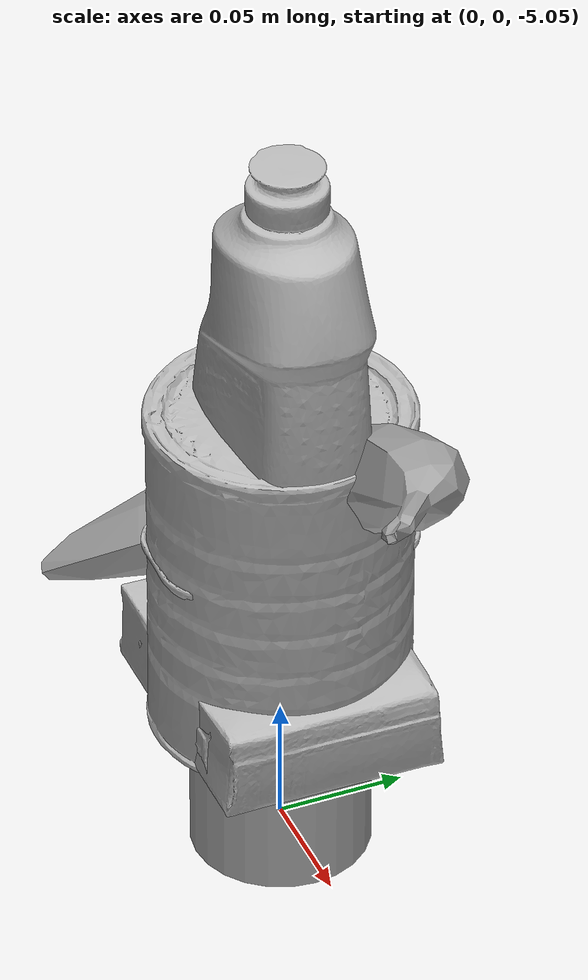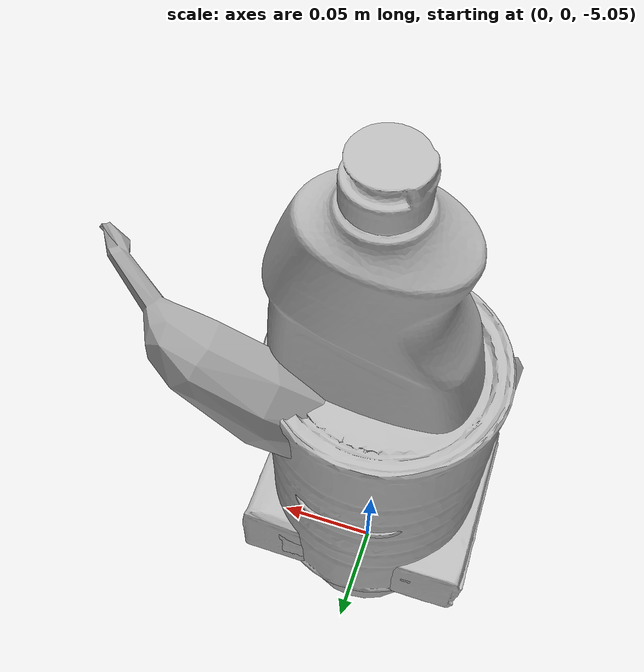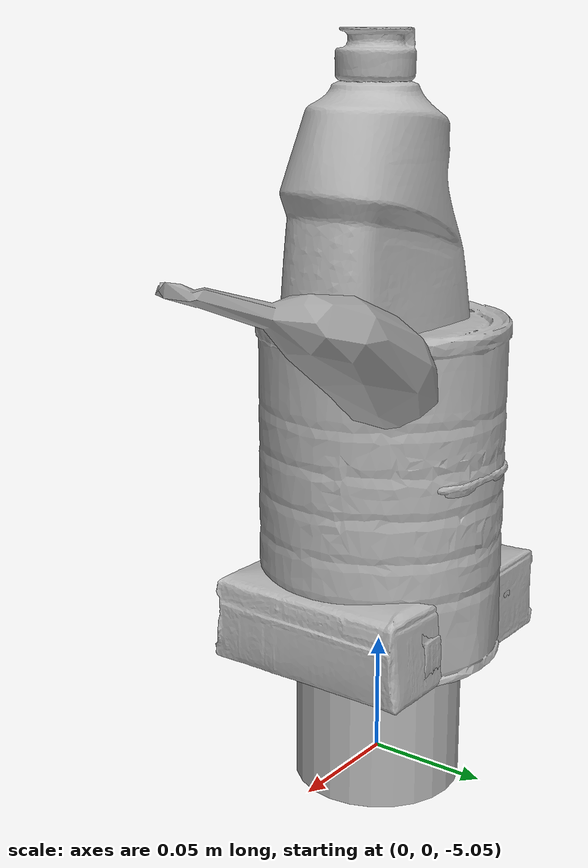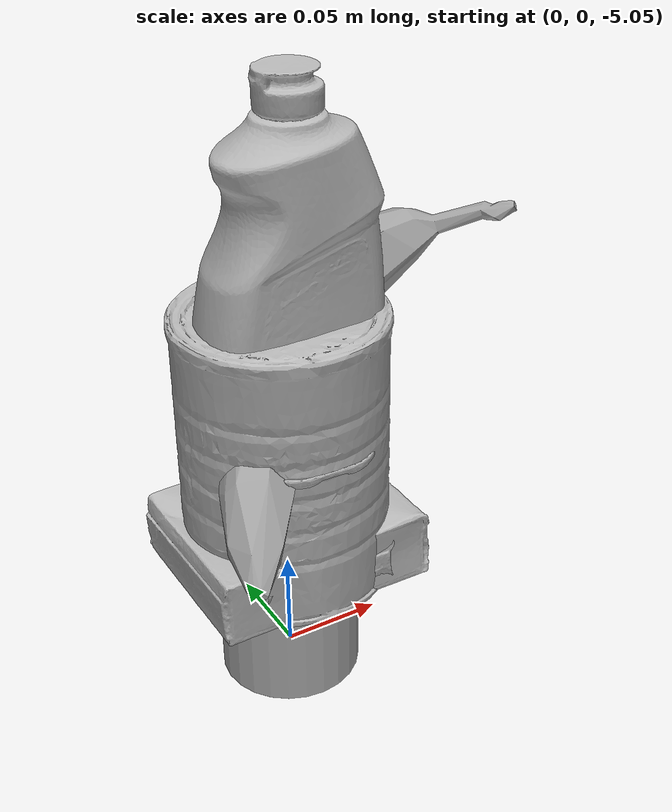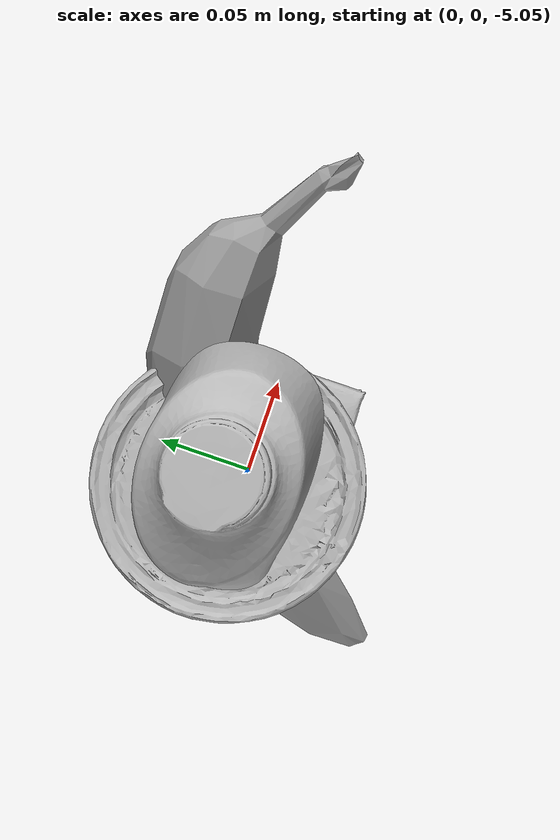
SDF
<sdf version="1.8">
 <world name="formal_objects_dataset">
  <plugin filename="ignition-gazebo-physics-system" name="ignition::gazebo::systems::Physics"/>
  <plugin filename="ignition-gazebo-user-commands-system" name="ignition::gazebo::systems::UserCommands"/>
  <plugin filename="ignition-gazebo-scene-broadcaster-system" name="ignition::gazebo::systems::SceneBroadcaster"/>
  <plugin filename="ignition-gazebo-sensors-system" name="ignition::gazebo::systems::Sensors">
   <render_engine>ogre2</render_engine>
  </plugin>
  <scene>
   <ambient>0.55 0.55 0.55 1</ambient>
   <background>0.72 0.76 0.80 1</background>
   <shadows>true</shadows>
  </scene>
  <light type="directional" name="sun">
   <pose>0 0 5 0 0 0</pose>
   <diffuse>0.85 0.85 0.85 1</diffuse>
   <specular>0.25 0.25 0.25 1</specular>
   <attenuation>
    <range>100</range>
    <constant>0.9</constant>
    <linear>0.01</linear>
    <quadratic>0.001</quadratic>
   </attenuation>
   <direction>-0.45 0.20 -0.87</direction>
  </light>
  <model name="ground">
   <static>true</static>
   <link name="link">
    <collision name="collision">
     <geometry><plane><normal>0 0 1</normal><size>8 8</size></plane></geometry>
    </collision>
    <visual name="visual">
     <geometry><plane><normal>0 0 1</normal><size>8 8</size></plane></geometry>
     <material><ambient>0.35 0.35 0.35 1</ambient><diffuse>0.45 0.45 0.45 1</diffuse></material>
    </visual>
   </link>
  </model>
  <model name="table">
   <static>true</static>
   <link name="top">
    <pose>0 0 0.72 0 0 0</pose>
    <collision name="collision"><geometry><box><size>1.20 0.80 0.06</size></box></geometry></collision>
    <visual name="visual">
     <geometry><box><size>1.20 0.80 0.06</size></box></geometry>
     <material><ambient>0.40 0.24 0.12 1</ambient><diffuse>0.55 0.34 0.18 1</diffuse></material>
    </visual>
   </link>
  </model>
  <include>
   <uri>model://banana</uri>
   <name>banana</name>
   <static>true</static>
   <pose>0 0 -5 0 0 0</pose>
   <plugin filename="ignition-gazebo-label-system" name="ignition::gazebo::systems::Label">
    <label>2</label>
   </plugin>
  </include>
  <include>
   <uri>model://beer</uri>
   <name>beer</name>
   <static>true</static>
   <pose>0 0 -5 0 0 0</pose>
   <plugin filename="ignition-gazebo-label-system" name="ignition::gazebo::systems::Label">
    <label>3</label>
   </plugin>
  </include>
  <include>
   <uri>model://bleach_cleanser</uri>
   <name>bleach_cleanser</name>
   <static>true</static>
   <pose>0 0 -5 0 0 0</pose>
   <plugin filename="ignition-gazebo-label-system" name="ignition::gazebo::systems::Label">
    <label>4</label>
   </plugin>
  </include>
  <include>
   <uri>model://gelatin_box</uri>
   <name>gelatin_box</name>
   <static>true</static>
   <pose>0 0 -5 0 0 0</pose>
   <plugin filename="ignition-gazebo-label-system" name="ignition::gazebo::systems::Label">
    <label>9</label>
   </plugin>
  </include>
  <include>
   <uri>model://master_chef_can</uri>
   <name>master_chef_can</name>
   <static>true</static>
   <pose>0 0 -5 0 0 0</pose>
   <plugin filename="ignition-gazebo-label-system" name="ignition::gazebo::systems::Label">
    <label>10</label>
   </plugin>
  </include>
  <include>
   <uri>model://potted_meat_can</uri>
   <name>potted_meat_can</name>
   <static>true</static>
   <pose>0 0 -5 0 0 0</pose>
   <plugin filename="ignition-gazebo-label-system" name="ignition::gazebo::systems::Label">
    <label>13</label>
   </plugin>
  </include>
  <include>
   <uri>model://pudding_box</uri>
   <name>pudding_box</name>
   <static>true</static>
   <pose>0 0 -5 0 0 0</pose>
   <plugin filename="ignition-gazebo-label-system" name="ignition::gazebo::systems::Label">
    <label>14</label>
   </plugin>
  </include>
  <include>
   <uri>model://tomato_soup_can</uri>
   <name>tomato_soup_can</name>
   <static>true</static>
   <pose>0 0 -5 0 0 0</pose>
   <plugin filename="ignition-gazebo-label-system" name="ignition::gazebo::systems::Label">
    <label>16</label>
   </plugin>
  </include>
  <include>
   <uri>model://tuna_fish_can</uri>
   <name>tuna_fish_can</name>
   <static>true</static>
   <pose>0 0 -5 0 0 0</pose>
   <plugin filename="ignition-gazebo-label-system" name="ignition::gazebo::systems::Label">
    <label>17</label>
   </plugin>
  </include>
  <model name="training_camera">
   <static>true</static>
   <pose>-1.20 0 1.075 0 0.1745329252 0</pose>
   <link name="link">
    <sensor name="rgb" type="camera">
     <topic>/training/rgb</topic>
     <camera>
      <horizontal_fov>1.2217304764</horizontal_fov>
      <image><width>640</width><height>480</height><format>R8G8B8</format></image>
      <clip><near>0.20</near><far>10.0</far></clip>
     </camera>
     <always_on>true</always_on>
     <update_rate>15</update_rate>
     <visualize>false</visualize>
    </sensor>
    <sensor name="visible_boxes" type="boundingbox_camera">
     <topic>/training/boxes</topic>
     <camera>
      <box_type>visible_2d</box_type>
      <horizontal_fov>1.2217304764</horizontal_fov>
      <image><width>640</width><height>480</height></image>
      <clip><near>0.20</near><far>10.0</far></clip>
     </camera>
     <always_on>true</always_on>
     <update_rate>15</update_rate>
     <visualize>false</visualize>
    </sensor>
   </link>
  </model>
 </world>
</sdf>

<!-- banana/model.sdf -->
<sdf version="1.5">
	<model name="OBJECT">
		<link name="Obj_3">
			<pose>0 0 0.1 2.2 -0.296705961227417 0.01745329052209854</pose>
			<inertial>
				<mass>0.8622732758522034</mass>
				<pose>0.03477764129638672 0.0029336530715227127 0.01468808762729168 2.1619239021219983e-07 1.229939812219527e-07 -1.3813895805014909e-07</pose>
				<inertia>
					<ixx>0.010104811936616898</ixx>
					<ixy>0.0</ixy>
					<ixz>0.0</ixz>
					<iyy>0.02979417145252228</iyy>
					<iyz>0.0</iyz>
					<izz>0.022718265652656555</izz>
				</inertia>
			</inertial>
			<collision name="VIS_Obj_3_Banana_Coll">
				<pose>-0.18325240910053253 -0.042692720890045166 -0.0038590345066040754 3.054346677799913e-07 5.162897664945376e-08 -1.8141007274152798e-07</pose>
				<geometry>
					<mesh>
						<uri>model://banana/meshes/collisions/COL_Obj_3_Banana_Coll.dae</uri>
						<scale>0.11999999731779099 0.11999999731779099 0.11999999731779099</scale>
					</mesh>
				</geometry>
			</collision>
			<visual name="VIS_Obj_3_Banana">
				<pose>-0.18325240910053253 -0.042692720890045166 -0.0038590345066040754 3.054346677799913e-07 5.162897664945376e-08 -1.8141007274152798e-07</pose>
				<geometry>
					<mesh>
						<uri>model://banana/meshes/visual/VIS_Obj_3_Banana.dae</uri>
						<scale>0.11999999731779099 0.11999999731779099 0.11999999731779099</scale>
					</mesh>
				</geometry>
			</visual>
		</link>
	</model>
</sdf>

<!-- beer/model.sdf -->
<sdf version='1.4'>
  <model name="beer">
    <link name='link'>
      <pose>0 0 0 0 0 0</pose>
      <inertial>
        <mass>0.390</mass>
        <inertia>
          <ixx>0.00058</ixx>
          <ixy>0</ixy>
          <ixz>0</ixz>
          <iyy>0.00058</iyy>
          <iyz>0</iyz>
          <izz>0.00025</izz>
        </inertia>
      </inertial>
      <collision name='collision'>
        <geometry>
          <cylinder>
            <radius>0.03500</radius>
            <length>0.12000</length>
          </cylinder>
        </geometry>
      </collision>

      <visual name='visual'>
        <geometry>
          <cylinder>
            <radius>0.03500</radius>
            <length>0.12000</length>
          </cylinder>
        </geometry>

        <material>
          <script>
            <uri>model://beer/materials/scripts</uri>
            <uri>model://beer/materials/textures</uri>
            <name>Beer/Diffuse</name>
          </script>
        </material>
      </visual>
    </link>
  </model>
</sdf>

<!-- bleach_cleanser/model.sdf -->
<sdf version="1.6">
  <model name="bleach_cleanser">
    <link name="link">
      <inertial>
        <mass>1.131</mass>
        <inertia>
          <ixx>0.006288831</ixx>
          <ixy>0.0</ixy>
          <ixz>0.0</ixz>
          <iyy>0.006795802</iyy>
          <iyz>0.0</iyz>
          <izz>0.001303383</izz>
        </inertia>
        <pose>0 0 0.125 0 0 0</pose>
      </inertial>
      <collision name="collision">
        <pose>0.02 -0.012 0 0 0 0</pose>
        <geometry>
          <mesh>
            <uri>model://bleach_cleanser/meshes/nontextured.stl</uri>
          </mesh>
        </geometry>
      </collision>
      <visual name="visual">
        <pose>0.02 -0.012 0 0 0 0</pose>
        <geometry>
          <mesh>
            <uri>model://bleach_cleanser/meshes/textured.dae</uri>
          </mesh>
        </geometry>
      </visual>
    </link>
  </model>
</sdf>

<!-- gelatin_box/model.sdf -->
<sdf version="1.6">
  <model name="gelatin_box">
    <link name="link">
      <inertial>
        <mass>0.097</mass>
        <inertia>
          <ixx>0.000064739</ixx>
          <ixy>0.0</ixy>
          <ixz>0.0</ixz>
          <iyy>0.000049413</iyy>
          <iyz>0.0</iyz>
          <izz>0.000101478</izz>
        </inertia>
        <pose>0 0 0.014 0 0 0</pose>
      </inertial>
      <collision name="collision">
        <pose>0 0 0.014 0 0 0</pose>
        <geometry>
          <box>
            <size>0.073 0.085 0.028</size>
          </box>
        </geometry>
      </collision>
      <visual name="visual">
        <!--
          DAE 的厚度轴是 X，而 collision 的厚度轴是 Z。先绕 Y
          轴旋转 90° 使三边对应，再对齐两者包围盒中心。
        -->
        <pose>-0.036801976 -0.001813649 0.012466166 0 1.570796327 0</pose>
        <geometry>
          <mesh>
            <uri>model://gelatin_box/meshes/textured.dae</uri>
          </mesh>
        </geometry>
      </visual>
    </link>
  </model>
</sdf>

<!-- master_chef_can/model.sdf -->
<sdf version="1.6">
  <model name="master_chef_can">
    <link name="link">
      <inertial>
        <mass>0.414</mass>
        <inertia>
          <ixx>0.000935778</ixx>
          <ixy>0.0</ixy>
          <ixz>0.0</ixz>
          <iyy>0.000935778</iyy> <!-- same as ixx -->
          <iyz>0.0</iyz>
          <izz>0.000538407</izz>
        </inertia>
        <pose>0 0 0.0695 0 0 0</pose>
      </inertial>
      <collision name="collision">
        <pose>0 0 0.0695 0 0 0</pose>
        <geometry>
          <cylinder>
            <radius>0.051</radius>
            <length>0.139</length>
          </cylinder>
        </geometry>
      </collision>
      <visual name="visual">
        <!-- 用网格包围盒中心对齐简化圆柱 collision 中心。 -->
        <pose>0.000181760 -0.000011235 -0.000672300 0 0 0</pose>
        <geometry>
          <mesh>
            <uri>model://master_chef_can/meshes/textured.dae</uri>
          </mesh>
        </geometry>
      </visual>
    </link>
  </model>
</sdf>

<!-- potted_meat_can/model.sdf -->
<sdf version="1.6">
  <model name="potted_meat_can">
    <link name="link">
      <inertial>
        <mass>0.370</mass>
        <inertia>
          <ixx>0.000497434</ixx>
          <ixy>0.0</ixy>
          <ixz>0.0</ixz>
          <iyy>0.000284407</iyy>
          <iyz>0.0</iyz>
          <izz>0.000367194</izz>
        </inertia>
        <pose>0 0 0.041 0 0 0</pose>
      </inertial>
      <collision name="collision">
        <pose>0 0 0.041 0 0 0</pose>
        <geometry>
          <box>
            <size>0.050 0.097 0.082</size>
          </box>
        </geometry>
      </collision>
      <visual name="visual">
        <!-- 保留原有绕 Z 轴 1.5 rad 的边长对应，仅修正中心偏移。 -->
        <pose>-0.000203250 -0.000041670 -0.000868438 0 0 1.5</pose>
        <geometry>
          <mesh>
            <uri>model://potted_meat_can/meshes/textured.dae</uri>
          </mesh>
        </geometry>
      </visual>
    </link>
  </model>
</sdf>

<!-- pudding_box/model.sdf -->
<sdf version="1.6">
  <model name="pudding_box">
    <link name="link">
      <inertial>
        <mass>0.187</mass>
        <inertia>
          <ixx>0.000142525</ixx>
          <ixy>0.0</ixy>
          <ixz>0.0</ixz>
          <iyy>0.000207648</iyy>
          <iyz>0.0</iyz>
          <izz>0.000311994</izz>
        </inertia>
        <pose>0 0 0.0175 0 0 0</pose>
      </inertial>
      <collision name="collision">
        <pose>0 0 0.0175 0 0 0</pose>
        <geometry>
          <box>
            <size>0.110 0.089 0.035</size>
          </box>
        </geometry>
      </collision>
      <visual name="visual">
        <!--
          DAE 的厚度轴是 Y，而 collision 的厚度轴是 Z。先绕 X
          轴旋转 90° 使三边对应，再对齐两者包围盒中心。
        -->
        <pose>0.000264585 0.044871683 0.016779020 1.570796327 0 0</pose>
        <geometry>
          <mesh>
            <uri>model://pudding_box/meshes/textured.dae</uri>
          </mesh>
        </geometry>
      </visual>
    </link>
  </model>
</sdf>

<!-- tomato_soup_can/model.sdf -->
<sdf version="1.6">
  <model name="tomato_soup_can">
    <link name="link">
      <inertial>
        <mass>0.349</mass>
        <inertia>
          <ixx>0.000391694</ixx>
          <ixy>0.0</ixy>
          <ixz>0.0</ixz>
          <iyy>0.000391694</iyy> <!-- same as ixx -->
          <iyz>0.0</iyz>
          <izz>0.00019003</izz>
        </inertia>
        <pose>0 0 0.0505 0 0 0</pose>
      </inertial>
      <collision name="collision">
        <pose>0 0 0.0505 0 0 0</pose>
        <geometry>
          <cylinder>
            <radius>0.033</radius>
            <length>0.101</length>
          </cylinder>
        </geometry>
      </collision>
      <visual name="visual">
        <!-- 修正原配置导致的约 86 mm 偏移，对齐网格与圆柱 collision 中心。 -->
        <pose>0.001383130 0.000855565 -0.000503905 0 0 0</pose>
        <geometry>
          <mesh>
            <uri>model://tomato_soup_can/meshes/textured.dae</uri>
          </mesh>
        </geometry>
      </visual>
    </link>
  </model>
</sdf>

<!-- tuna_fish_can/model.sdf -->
<sdf version="1.6">
  <model name="tuna_fish_can">
    <link name="link">
      <inertial>
        <mass>0.171</mass>
        <inertia>
          <ixx>0.000092735</ixx>
          <ixy>0.0</ixy>
          <ixz>0.0</ixz>
          <iyy>0.000092735</iyy> <!-- same as ixx -->
          <iyz>0.0</iyz>
          <izz>0.000154434</izz>
        </inertia>
        <pose>0 0 0.0165 0 0 0</pose>
      </inertial>
      <collision name="collision">
        <pose>0 0 0.0165 0 0 0</pose>
        <geometry>
          <cylinder>
            <radius>0.0425</radius>
            <length>0.033</length>
          </cylinder>
        </geometry>
      </collision>
      <visual name="visual">
        <!-- 用网格包围盒中心对齐简化圆柱 collision 中心。 -->
        <pose>-0.000415240 0.000041785 -0.000366933 0 0 0</pose>
        <geometry>
          <mesh>
            <uri>model://tuna_fish_can/meshes/textured.dae</uri>
          </mesh>
        </geometry>
      </visual>
    </link>
  </model>
</sdf>
